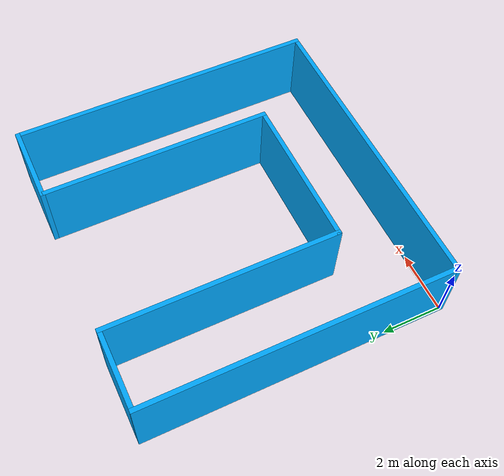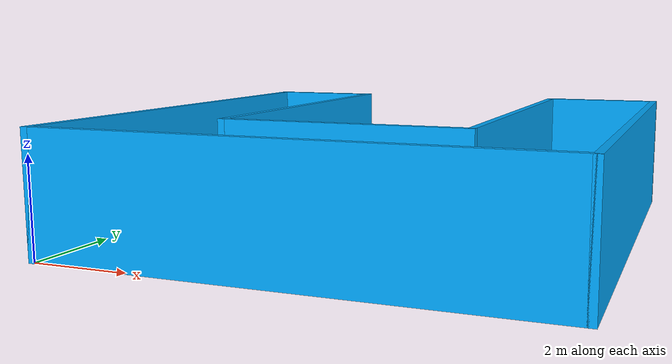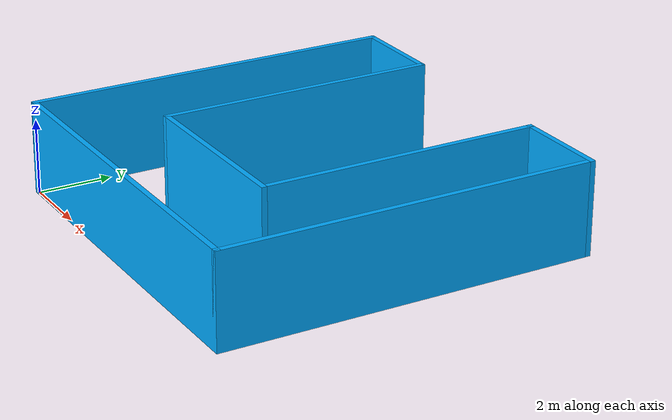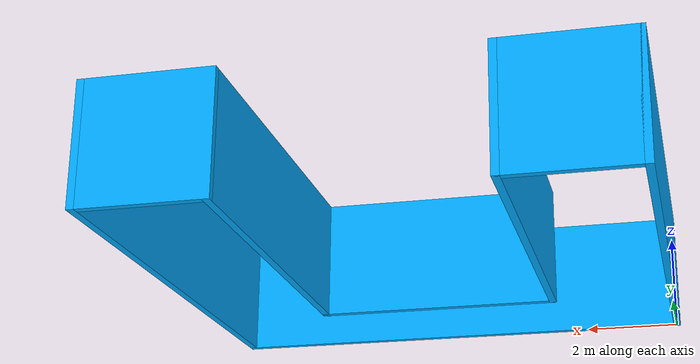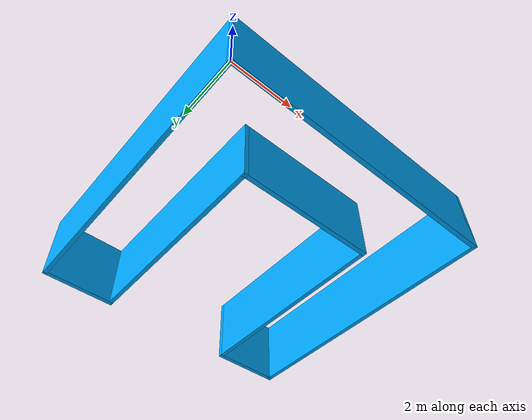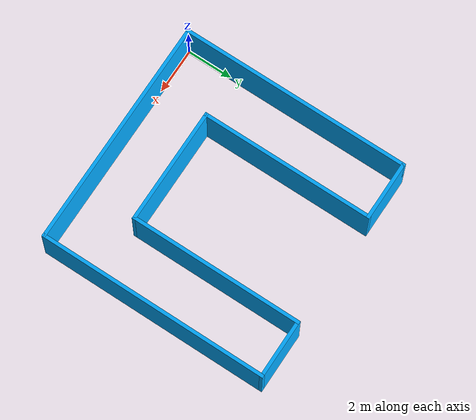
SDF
<?xml version='1.0'?>
<sdf version='1.6'>
  <model name='mybuilding'>
    <pose frame=''>5 5 0 0 -0 0</pose>
    <link name='Wall_59'>
      <collision name='Wall_59_Collision'>
        <geometry>
          <box>
            <size>10.15 0.15 2.5</size>
          </box>
        </geometry>
        <pose frame=''>0 0 1.25 0 -0 0</pose>
      </collision>
      <visual name='Wall_59_Visual'>
        <pose frame=''>0 0 1.25 0 -0 0</pose>
        <geometry>
          <box>
            <size>10.15 0.15 2.5</size>
          </box>
        </geometry>
        <material>
          <script>
            <uri>file://media/materials/scripts/gazebo.material</uri>
            <name>Gazebo/Grey</name>
          </script>
          <ambient>0 0.666667 1 1</ambient>
        </material>
        <meta>
          <layer>0</layer>
        </meta>
      </visual>
      <pose frame=''>0 -5 0 0 -0 0</pose>
    </link>
    <link name='Wall_61'>
      <collision name='Wall_61_Collision'>
        <geometry>
          <box>
            <size>10.15 0.15 2.5</size>
          </box>
        </geometry>
        <pose frame=''>0 0 1.25 0 -0 0</pose>
      </collision>
      <visual name='Wall_61_Visual'>
        <pose frame=''>0 0 1.25 0 -0 0</pose>
        <geometry>
          <box>
            <size>10.15 0.15 2.5</size>
          </box>
        </geometry>
        <material>
          <script>
            <uri>file://media/materials/scripts/gazebo.material</uri>
            <name>Gazebo/Grey</name>
          </script>
          <ambient>0 0.666667 1 1</ambient>
        </material>
        <meta>
          <layer>0</layer>
        </meta>
      </visual>
      <pose frame=''>-5 0 0 0 -0 1.5708</pose>
    </link>
    <link name='Wall_63'>
      <collision name='Wall_63_Collision'>
        <geometry>
          <box>
            <size>10.15 0.15 2.5</size>
          </box>
        </geometry>
        <pose frame=''>0 0 1.25 0 -0 0</pose>
      </collision>
      <visual name='Wall_63_Visual'>
        <pose frame=''>0 0 1.25 0 -0 0</pose>
        <geometry>
          <box>
            <size>10.15 0.15 2.5</size>
          </box>
        </geometry>
        <material>
          <script>
            <uri>file://media/materials/scripts/gazebo.material</uri>
            <name>Gazebo/Grey</name>
          </script>
          <ambient>0 0.666667 1 1</ambient>
        </material>
        <meta>
          <layer>0</layer>
        </meta>
      </visual>
      <pose frame=''>5 0 0 0 -0 1.5708</pose>
    </link>
    <link name='Wall_65'>
      <collision name='Wall_65_Collision'>
        <geometry>
          <box>
            <size>2.65 0.15 2.5</size>
          </box>
        </geometry>
        <pose frame=''>0 0 1.25 0 -0 0</pose>
      </collision>
      <visual name='Wall_65_Visual'>
        <pose frame=''>0 0 1.25 0 -0 0</pose>
        <geometry>
          <box>
            <size>2.65 0.15 2.5</size>
          </box>
        </geometry>
        <material>
          <script>
            <uri>file://media/materials/scripts/gazebo.material</uri>
            <name>Gazebo/Grey</name>
          </script>
          <ambient>0 0.666667 1 1</ambient>
        </material>
        <meta>
          <layer>0</layer>
        </meta>
      </visual>
      <pose frame=''>-3.75 5 0 0 -0 0</pose>
    </link>
    <link name='Wall_67'>
      <collision name='Wall_67_Collision'>
        <geometry>
          <box>
            <size>2.65 0.15 2.5</size>
          </box>
        </geometry>
        <pose frame=''>0 0 1.25 0 -0 0</pose>
      </collision>
      <visual name='Wall_67_Visual'>
        <pose frame=''>0 0 1.25 0 -0 0</pose>
        <geometry>
          <box>
            <size>2.65 0.15 2.5</size>
          </box>
        </geometry>
        <material>
          <script>
            <uri>file://media/materials/scripts/gazebo.material</uri>
            <name>Gazebo/Grey</name>
          </script>
          <ambient>0 0.666667 1 1</ambient>
        </material>
        <meta>
          <layer>0</layer>
        </meta>
      </visual>
      <pose frame=''>3.75 5 0 0 -0 3.14159</pose>
    </link>
    <link name='Wall_69'>
      <collision name='Wall_69_Collision'>
        <geometry>
          <box>
            <size>7.65 0.15 2.5</size>
          </box>
        </geometry>
        <pose frame=''>0 0 1.25 0 -0 0</pose>
      </collision>
      <visual name='Wall_69_Visual'>
        <pose frame=''>0 0 1.25 0 -0 0</pose>
        <geometry>
          <box>
            <size>7.65 0.15 2.5</size>
          </box>
        </geometry>
        <material>
          <script>
            <uri>file://media/materials/scripts/gazebo.material</uri>
            <name>Gazebo/Grey</name>
          </script>
          <ambient>0 0.666667 1 1</ambient>
        </material>
        <meta>
          <layer>0</layer>
        </meta>
      </visual>
      <pose frame=''>-2.5 1.25 0 0 0 -1.5708</pose>
    </link>
    <link name='Wall_71'>
      <collision name='Wall_71_Collision'>
        <geometry>
          <box>
            <size>7.65 0.15 2.5</size>
          </box>
        </geometry>
        <pose frame=''>0 0 1.25 0 -0 0</pose>
      </collision>
      <visual name='Wall_71_Visual'>
        <pose frame=''>0 0 1.25 0 -0 0</pose>
        <geometry>
          <box>
            <size>7.65 0.15 2.5</size>
          </box>
        </geometry>
        <material>
          <script>
            <uri>file://media/materials/scripts/gazebo.material</uri>
            <name>Gazebo/Grey</name>
          </script>
          <ambient>0 0.666667 1 1</ambient>
        </material>
        <meta>
          <layer>0</layer>
        </meta>
      </visual>
      <pose frame=''>2.5 1.25 0 0 0 -1.5708</pose>
    </link>
    <link name='Wall_72'>
      <collision name='Wall_72_Collision'>
        <geometry>
          <box>
            <size>5.15 0.15 2.5</size>
          </box>
        </geometry>
        <pose frame=''>0 0 1.25 0 -0 0</pose>
      </collision>
      <visual name='Wall_72_Visual'>
        <pose frame=''>0 0 1.25 0 -0 0</pose>
        <geometry>
          <box>
            <size>5.15 0.15 2.5</size>
          </box>
        </geometry>
        <material>
          <script>
            <uri>file://media/materials/scripts/gazebo.material</uri>
            <name>Gazebo/Grey</name>
          </script>
          <ambient>0 0.666667 1 1</ambient>
        </material>
        <meta>
          <layer>0</layer>
        </meta>
      </visual>
      <pose frame=''>0 -2.5 0 0 -0 3.14159</pose>
    </link>
    <static>1</static>
  </model>
</sdf>
